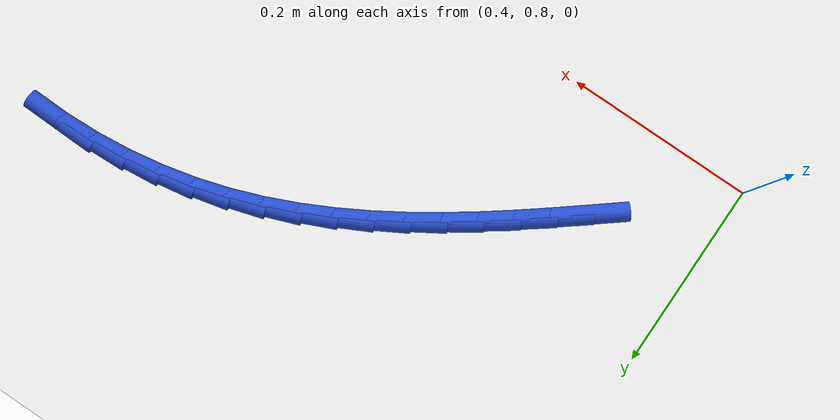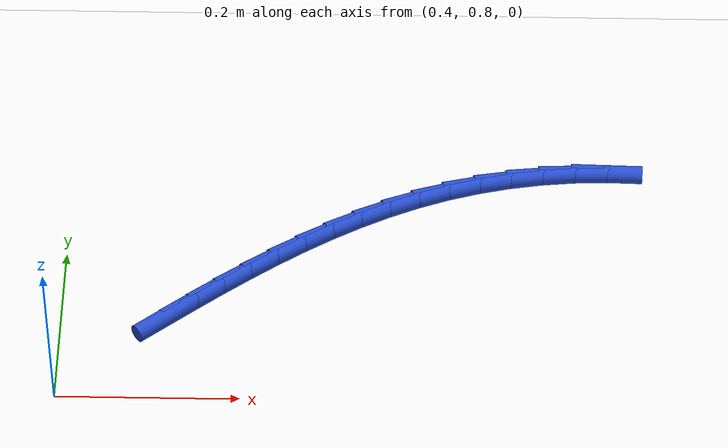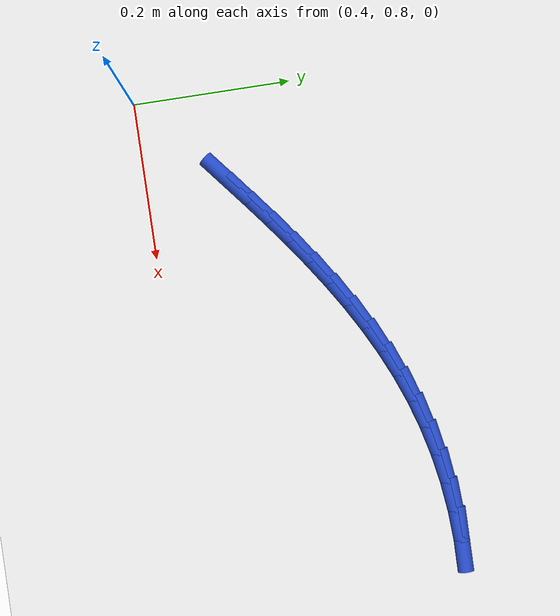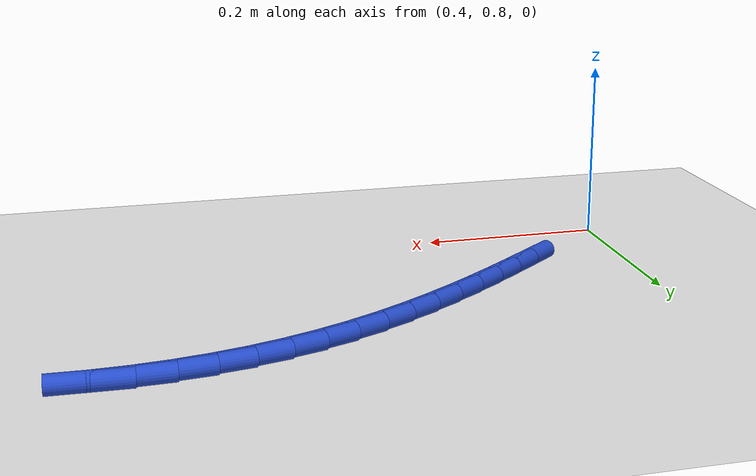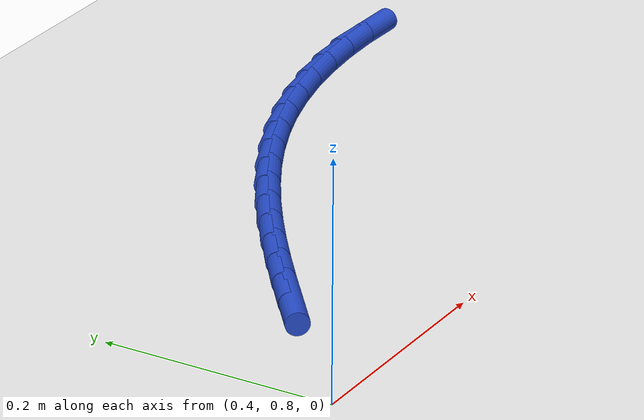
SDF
<sdf version="1.6">
 <world name="default">
  <model name="ground_plane">
   <static>1</static>
   <link name="link">
    <collision name="collision">
     <geometry><plane><normal>0 0 1</normal><size>100 100</size></plane></geometry>
     <surface><friction><ode><mu>100</mu><mu2>50</mu2></ode></friction></surface>
    </collision>
    <visual name="visual">
     <cast_shadows>0</cast_shadows>
     <geometry><plane><normal>0 0 1</normal><size>100 100</size></plane></geometry>
     <material>
      <script><uri>file://media/materials/scripts/gazebo.material</uri><name>Gazebo/WhiteGlow</name></script>
     </material>
    </visual>
   </link>
  </model>
  <model name="line">
   <link name="link_30">
    <pose>0.5157966294236228 0.9051283283145938 0.01 0 1.57 0.6735046634133595</pose>
    <collision name="collision">
     <geometry><cylinder><radius>0.01</radius><length>0.08</length></cylinder></geometry>
    </collision>
    <visual name="visual">
     <material>
      <script><name>Gazebo/Blue</name><uri>file://media/materials/scripts/gazebo.material</uri></script>
     </material>
     <geometry><cylinder><radius>0.01</radius><length>0.08</length></cylinder></geometry>
    </visual>
   </link>
   <link name="link_31">
    <pose>0.5440946984006064 0.92770946589841 0.01 0 1.57 0.6606003718626808</pose>
    <collision name="collision">
     <geometry><cylinder><radius>0.01</radius><length>0.08</length></cylinder></geometry>
    </collision>
    <visual name="visual">
     <material>
      <script><name>Gazebo/Blue</name><uri>file://media/materials/scripts/gazebo.material</uri></script>
     </material>
     <geometry><cylinder><radius>0.01</radius><length>0.08</length></cylinder></geometry>
    </visual>
   </link>
   <link name="link_32">
    <pose>0.5727304144705806 0.9499613462027869 0.01 0 1.57 0.6423070653801735</pose>
    <collision name="collision">
     <geometry><cylinder><radius>0.01</radius><length>0.08</length></cylinder></geometry>
    </collision>
    <visual name="visual">
     <material>
      <script><name>Gazebo/Blue</name><uri>file://media/materials/scripts/gazebo.material</uri></script>
     </material>
     <geometry><cylinder><radius>0.01</radius><length>0.08</length></cylinder></geometry>
    </visual>
   </link>
   <link name="link_33">
    <pose>0.6017718026709176 0.9716882534961189 0.01 0 1.57 0.6185427021361295</pose>
    <collision name="collision">
     <geometry><cylinder><radius>0.01</radius><length>0.08</length></cylinder></geometry>
    </collision>
    <visual name="visual">
     <material>
      <script><name>Gazebo/Blue</name><uri>file://media/materials/scripts/gazebo.material</uri></script>
     </material>
     <geometry><cylinder><radius>0.01</radius><length>0.08</length></cylinder></geometry>
    </visual>
   </link>
   <link name="link_34">
    <pose>0.631286888038991 0.9926944720468023 0.01 0 1.57 0.5891980538573569</pose>
    <collision name="collision">
     <geometry><cylinder><radius>0.01</radius><length>0.08</length></cylinder></geometry>
    </collision>
    <visual name="visual">
     <material>
      <script><name>Gazebo/Blue</name><uri>file://media/materials/scripts/gazebo.material</uri></script>
     </material>
     <geometry><cylinder><radius>0.01</radius><length>0.08</length></cylinder></geometry>
    </visual>
   </link>
   <link name="link_35">
    <pose>0.6613436956121731 1.0127842861232328 0.01 0 1.57 0.5541574567162315</pose>
    <collision name="collision">
     <geometry><cylinder><radius>0.01</radius><length>0.08</length></cylinder></geometry>
    </collision>
    <visual name="visual">
     <material>
      <script><name>Gazebo/Blue</name><uri>file://media/materials/scripts/gazebo.material</uri></script>
     </material>
     <geometry><cylinder><radius>0.01</radius><length>0.08</length></cylinder></geometry>
    </visual>
   </link>
   <link name="link_36">
    <pose>0.6920102504278363 1.0317619799938054 0.01 0 1.57 0.5133262465839459</pose>
    <collision name="collision">
     <geometry><cylinder><radius>0.01</radius><length>0.08</length></cylinder></geometry>
    </collision>
    <visual name="visual">
     <material>
      <script><name>Gazebo/Blue</name><uri>file://media/materials/scripts/gazebo.material</uri></script>
     </material>
     <geometry><cylinder><radius>0.01</radius><length>0.08</length></cylinder></geometry>
    </visual>
   </link>
   <link name="link_37">
    <pose>0.7233545775233543 1.0494318379269165 0.01 0 1.57 0.46666562736941286</pose>
    <collision name="collision">
     <geometry><cylinder><radius>0.01</radius><length>0.08</length></cylinder></geometry>
    </collision>
    <visual name="visual">
     <material>
      <script><name>Gazebo/Blue</name><uri>file://media/materials/scripts/gazebo.material</uri></script>
     </material>
     <geometry><cylinder><radius>0.01</radius><length>0.08</length></cylinder></geometry>
    </visual>
   </link>
   <link name="link_38">
    <pose>0.7554447019360988 1.0655981441909608 0.01 0 1.57 0.4142344563140027</pose>
    <collision name="collision">
     <geometry><cylinder><radius>0.01</radius><length>0.08</length></cylinder></geometry>
    </collision>
    <visual name="visual">
     <material>
      <script><name>Gazebo/Blue</name><uri>file://media/materials/scripts/gazebo.material</uri></script>
     </material>
     <geometry><cylinder><radius>0.01</radius><length>0.08</length></cylinder></geometry>
    </visual>
   </link>
   <link name="link_39">
    <pose>0.7883486487034435 1.0800651830543349 0.01 0 1.57 0.3562351879163544</pose>
    <collision name="collision">
     <geometry><cylinder><radius>0.01</radius><length>0.08</length></cylinder></geometry>
    </collision>
    <visual name="visual">
     <material>
      <script><name>Gazebo/Blue</name><uri>file://media/materials/scripts/gazebo.material</uri></script>
     </material>
     <geometry><cylinder><radius>0.01</radius><length>0.08</length></cylinder></geometry>
    </visual>
   </link>
   <link name="link_40">
    <pose>0.8221344428627603 1.0926372387854333 0.01 0 1.57 0.29329104934760364</pose>
    <collision name="collision">
     <geometry><cylinder><radius>0.01</radius><length>0.08</length></cylinder></geometry>
    </collision>
    <visual name="visual">
     <material>
      <script><name>Gazebo/Blue</name><uri>file://media/materials/scripts/gazebo.material</uri></script>
     </material>
     <geometry><cylinder><radius>0.01</radius><length>0.08</length></cylinder></geometry>
    </visual>
   </link>
   <link name="link_41">
    <pose>0.8568594252054567 1.1031241987613323 0.01 0 1.57 0.22909867496569786</pose>
    <collision name="collision">
     <geometry><cylinder><radius>0.01</radius><length>0.08</length></cylinder></geometry>
    </collision>
    <visual name="visual">
     <material>
      <script><name>Gazebo/Blue</name><uri>file://media/materials/scripts/gazebo.material</uri></script>
     </material>
     <geometry><cylinder><radius>0.01</radius><length>0.08</length></cylinder></geometry>
    </visual>
   </link>
   <link name="link_42">
    <pose>0.892424857597681 1.1114178023853174 0.01 0 1.57 0.1657538611003626</pose>
    <collision name="collision">
     <geometry><cylinder><radius>0.01</radius><length>0.08</length></cylinder></geometry>
    </collision>
    <visual name="visual">
     <material>
      <script><name>Gazebo/Blue</name><uri>file://media/materials/scripts/gazebo.material</uri></script>
     </material>
     <geometry><cylinder><radius>0.01</radius><length>0.08</length></cylinder></geometry>
    </visual>
   </link>
   <link name="link_43">
    <pose>0.9286137609273181 1.1174717978401187 0.01 0 1.57 0.10265564131967057</pose>
    <collision name="collision">
     <geometry><cylinder><radius>0.01</radius><length>0.08</length></cylinder></geometry>
    </collision>
    <visual name="visual">
     <material>
      <script><name>Gazebo/Blue</name><uri>file://media/materials/scripts/gazebo.material</uri></script>
     </material>
     <geometry><cylinder><radius>0.01</radius><length>0.08</length></cylinder></geometry>
    </visual>
   </link>
   <link name="link_44">
    <pose>0.9652062227575235 1.1212414716235972 0.01 0 1.57 0.03915320200424404</pose>
    <collision name="collision">
     <geometry><cylinder><radius>0.01</radius><length>0.08</length></cylinder></geometry>
    </collision>
    <visual name="visual">
     <material>
      <script><name>Gazebo/Blue</name><uri>file://media/materials/scripts/gazebo.material</uri></script>
     </material>
     <geometry><cylinder><radius>0.01</radius><length>0.08</length></cylinder></geometry>
    </visual>
   </link>
   <link name="link_45">
    <pose>1.0019823306514533 1.1226821102336157 0.01 0 1.57 -0.025392311762200307</pose>
    <collision name="collision">
     <geometry><cylinder><radius>0.01</radius><length>0.08</length></cylinder></geometry>
    </collision>
    <visual name="visual">
     <material>
      <script><name>Gazebo/Blue</name><uri>file://media/materials/scripts/gazebo.material</uri></script>
     </material>
     <geometry><cylinder><radius>0.01</radius><length>0.08</length></cylinder></geometry>
    </visual>
   </link>
  </model>
 </world>
</sdf>
